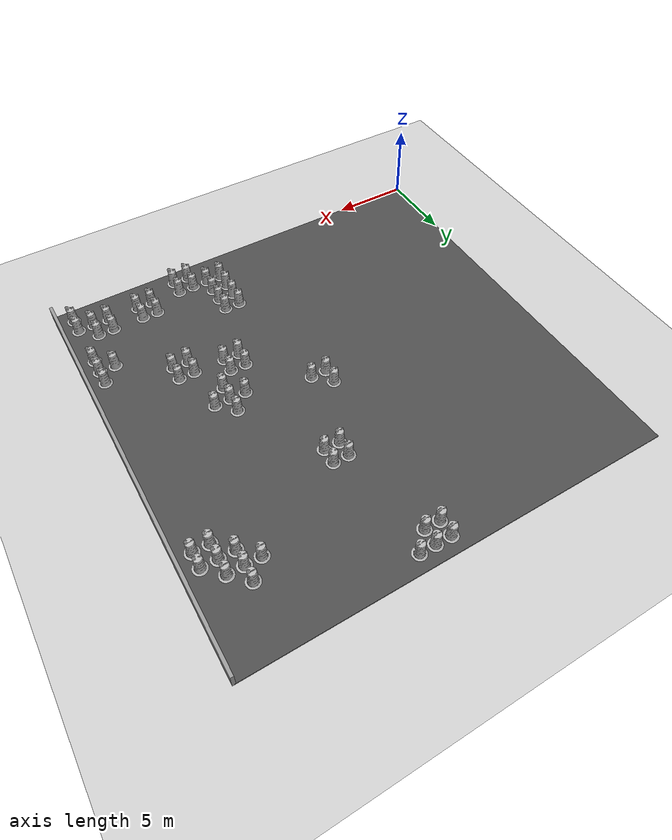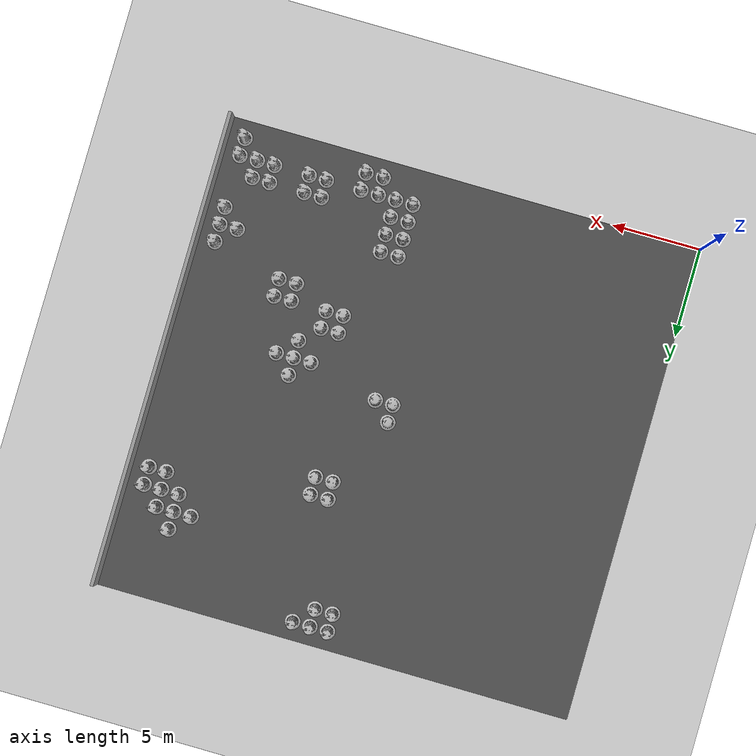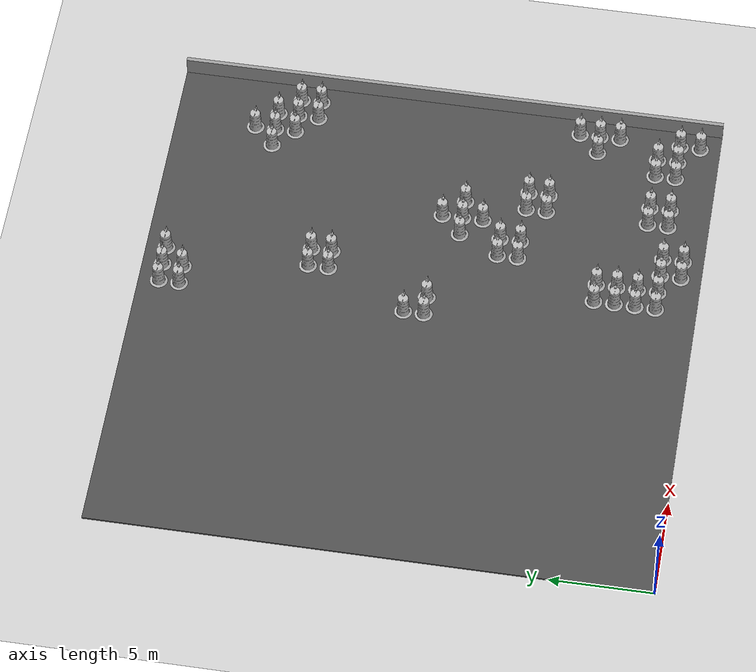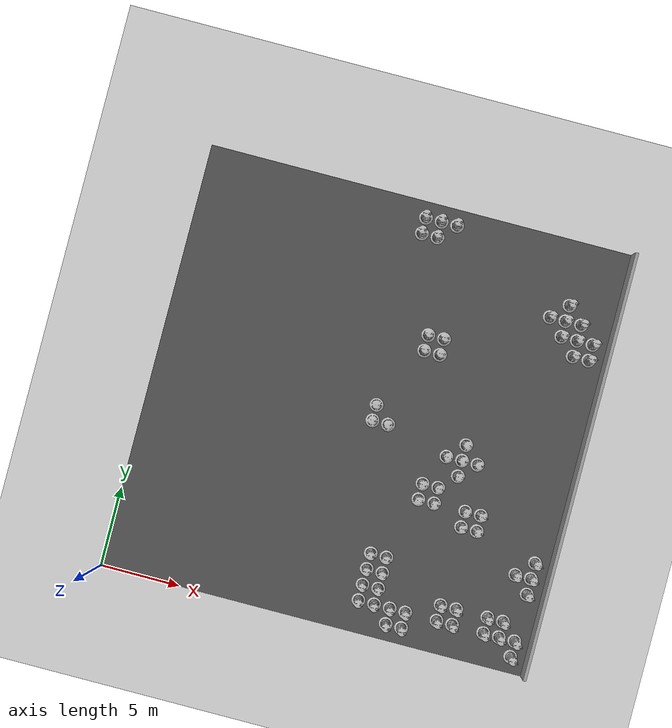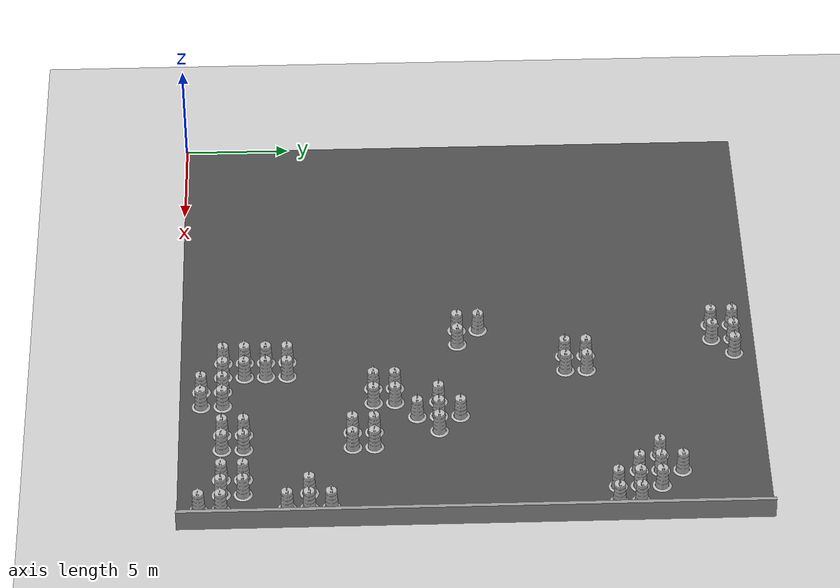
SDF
<sdf version="1.4">
 <world name="default">
  <include><uri>model://ground_plane</uri></include>
  <include><uri>model://sun</uri></include>
  <model name="grey_wall">
   <static>1</static>
   <link name="link">
    <visual name="visual">
     <cast_shadows>0</cast_shadows>
     <geometry><box><size>27 0.2 2</size></box></geometry>
     <material>
      <script>
       <uri>model://grey_wall/materials/scripts</uri>
       <uri>model://grey_wall/materials/textures</uri>
       <name>vrc/grey_wall</name>
      </script>
     </material>
    </visual>
   </link>
   <pose>27 13.5 0 0 0 -1.57079632679</pose>
  </model>
  <model name="asphalt_plane">
   <static>1</static>
   <link name="link">
    <visual name="visual">
     <cast_shadows>0</cast_shadows>
     <geometry><box><size>27 27 0.1</size></box></geometry>
     <material>
      <script>
       <uri>model://asphalt_plane/materials/scripts</uri>
       <uri>model://asphalt_plane/materials/textures</uri>
       <name>vrc/asphalt</name>
      </script>
     </material>
    </visual>
   </link>
   <pose>13.5 13.5 0 0 0 0</pose>
  </model>
  <model name="Construction Barrel">
   <link name="link">
    <collision name="collision">
     <geometry>
      <mesh><uri>model://construction_barrel/meshes/construction_barrel.dae</uri><scale>1 1 1</scale></mesh>
     </geometry>
    </collision>
    <visual name="visual">
     <geometry><mesh><uri>model://construction_barrel/meshes/construction_barrel.dae</uri></mesh></geometry>
    </visual>
   </link>
   <pose>14 13 0 0 0 0</pose>
   <static>1</static>
  </model>
  <model name="Construction Barrel">
   <link name="link">
    <collision name="collision">
     <geometry>
      <mesh><uri>model://construction_barrel/meshes/construction_barrel.dae</uri><scale>1 1 1</scale></mesh>
     </geometry>
    </collision>
    <visual name="visual">
     <geometry><mesh><uri>model://construction_barrel/meshes/construction_barrel.dae</uri></mesh></geometry>
    </visual>
   </link>
   <pose>14 14 0 0 0 0</pose>
   <static>1</static>
  </model>
  <model name="Construction Barrel">
   <link name="link">
    <collision name="collision">
     <geometry>
      <mesh><uri>model://construction_barrel/meshes/construction_barrel.dae</uri><scale>1 1 1</scale></mesh>
     </geometry>
    </collision>
    <visual name="visual">
     <geometry><mesh><uri>model://construction_barrel/meshes/construction_barrel.dae</uri></mesh></geometry>
    </visual>
   </link>
   <pose>14 25 0 0 0 0</pose>
   <static>1</static>
  </model>
  <model name="Construction Barrel">
   <link name="link">
    <collision name="collision">
     <geometry>
      <mesh><uri>model://construction_barrel/meshes/construction_barrel.dae</uri><scale>1 1 1</scale></mesh>
     </geometry>
    </collision>
    <visual name="visual">
     <geometry><mesh><uri>model://construction_barrel/meshes/construction_barrel.dae</uri></mesh></geometry>
    </visual>
   </link>
   <pose>14 26 0 0 0 0</pose>
   <static>1</static>
  </model>
  <model name="Construction Barrel">
   <link name="link">
    <collision name="collision">
     <geometry>
      <mesh><uri>model://construction_barrel/meshes/construction_barrel.dae</uri><scale>1 1 1</scale></mesh>
     </geometry>
    </collision>
    <visual name="visual">
     <geometry><mesh><uri>model://construction_barrel/meshes/construction_barrel.dae</uri></mesh></geometry>
    </visual>
   </link>
   <pose>15 13 0 0 0 0</pose>
   <static>1</static>
  </model>
  <model name="Construction Barrel">
   <link name="link">
    <collision name="collision">
     <geometry>
      <mesh><uri>model://construction_barrel/meshes/construction_barrel.dae</uri><scale>1 1 1</scale></mesh>
     </geometry>
    </collision>
    <visual name="visual">
     <geometry><mesh><uri>model://construction_barrel/meshes/construction_barrel.dae</uri></mesh></geometry>
    </visual>
   </link>
   <pose>15 25 0 0 0 0</pose>
   <static>1</static>
  </model>
  <model name="Construction Barrel">
   <link name="link">
    <collision name="collision">
     <geometry>
      <mesh><uri>model://construction_barrel/meshes/construction_barrel.dae</uri><scale>1 1 1</scale></mesh>
     </geometry>
    </collision>
    <visual name="visual">
     <geometry><mesh><uri>model://construction_barrel/meshes/construction_barrel.dae</uri></mesh></geometry>
    </visual>
   </link>
   <pose>15 26 0 0 0 0</pose>
   <static>1</static>
  </model>
  <model name="Construction Barrel">
   <link name="link">
    <collision name="collision">
     <geometry>
      <mesh><uri>model://construction_barrel/meshes/construction_barrel.dae</uri><scale>1 1 1</scale></mesh>
     </geometry>
    </collision>
    <visual name="visual">
     <geometry><mesh><uri>model://construction_barrel/meshes/construction_barrel.dae</uri></mesh></geometry>
    </visual>
   </link>
   <pose>16 2 0 0 0 0</pose>
   <static>1</static>
  </model>
  <model name="Construction Barrel">
   <link name="link">
    <collision name="collision">
     <geometry>
      <mesh><uri>model://construction_barrel/meshes/construction_barrel.dae</uri><scale>1 1 1</scale></mesh>
     </geometry>
    </collision>
    <visual name="visual">
     <geometry><mesh><uri>model://construction_barrel/meshes/construction_barrel.dae</uri></mesh></geometry>
    </visual>
   </link>
   <pose>16 3 0 0 0 0</pose>
   <static>1</static>
  </model>
  <model name="Construction Barrel">
   <link name="link">
    <collision name="collision">
     <geometry>
      <mesh><uri>model://construction_barrel/meshes/construction_barrel.dae</uri><scale>1 1 1</scale></mesh>
     </geometry>
    </collision>
    <visual name="visual">
     <geometry><mesh><uri>model://construction_barrel/meshes/construction_barrel.dae</uri></mesh></geometry>
    </visual>
   </link>
   <pose>16 4 0 0 0 0</pose>
   <static>1</static>
  </model>
  <model name="Construction Barrel">
   <link name="link">
    <collision name="collision">
     <geometry>
      <mesh><uri>model://construction_barrel/meshes/construction_barrel.dae</uri><scale>1 1 1</scale></mesh>
     </geometry>
    </collision>
    <visual name="visual">
     <geometry><mesh><uri>model://construction_barrel/meshes/construction_barrel.dae</uri></mesh></geometry>
    </visual>
   </link>
   <pose>16 5 0 0 0 0</pose>
   <static>1</static>
  </model>
  <model name="Construction Barrel">
   <link name="link">
    <collision name="collision">
     <geometry>
      <mesh><uri>model://construction_barrel/meshes/construction_barrel.dae</uri><scale>1 1 1</scale></mesh>
     </geometry>
    </collision>
    <visual name="visual">
     <geometry><mesh><uri>model://construction_barrel/meshes/construction_barrel.dae</uri></mesh></geometry>
    </visual>
   </link>
   <pose>16 18 0 0 0 0</pose>
   <static>1</static>
  </model>
  <model name="Construction Barrel">
   <link name="link">
    <collision name="collision">
     <geometry>
      <mesh><uri>model://construction_barrel/meshes/construction_barrel.dae</uri><scale>1 1 1</scale></mesh>
     </geometry>
    </collision>
    <visual name="visual">
     <geometry><mesh><uri>model://construction_barrel/meshes/construction_barrel.dae</uri></mesh></geometry>
    </visual>
   </link>
   <pose>16 19 0 0 0 0</pose>
   <static>1</static>
  </model>
  <model name="Construction Barrel">
   <link name="link">
    <collision name="collision">
     <geometry>
      <mesh><uri>model://construction_barrel/meshes/construction_barrel.dae</uri><scale>1 1 1</scale></mesh>
     </geometry>
    </collision>
    <visual name="visual">
     <geometry><mesh><uri>model://construction_barrel/meshes/construction_barrel.dae</uri></mesh></geometry>
    </visual>
   </link>
   <pose>16 26 0 0 0 0</pose>
   <static>1</static>
  </model>
  <model name="Construction Barrel">
   <link name="link">
    <collision name="collision">
     <geometry>
      <mesh><uri>model://construction_barrel/meshes/construction_barrel.dae</uri><scale>1 1 1</scale></mesh>
     </geometry>
    </collision>
    <visual name="visual">
     <geometry><mesh><uri>model://construction_barrel/meshes/construction_barrel.dae</uri></mesh></geometry>
    </visual>
   </link>
   <pose>17 2 0 0 0 0</pose>
   <static>1</static>
  </model>
  <model name="Construction Barrel">
   <link name="link">
    <collision name="collision">
     <geometry>
      <mesh><uri>model://construction_barrel/meshes/construction_barrel.dae</uri><scale>1 1 1</scale></mesh>
     </geometry>
    </collision>
    <visual name="visual">
     <geometry><mesh><uri>model://construction_barrel/meshes/construction_barrel.dae</uri></mesh></geometry>
    </visual>
   </link>
   <pose>17 3 0 0 0 0</pose>
   <static>1</static>
  </model>
  <model name="Construction Barrel">
   <link name="link">
    <collision name="collision">
     <geometry>
      <mesh><uri>model://construction_barrel/meshes/construction_barrel.dae</uri><scale>1 1 1</scale></mesh>
     </geometry>
    </collision>
    <visual name="visual">
     <geometry><mesh><uri>model://construction_barrel/meshes/construction_barrel.dae</uri></mesh></geometry>
    </visual>
   </link>
   <pose>17 4 0 0 0 0</pose>
   <static>1</static>
  </model>
  <model name="Construction Barrel">
   <link name="link">
    <collision name="collision">
     <geometry>
      <mesh><uri>model://construction_barrel/meshes/construction_barrel.dae</uri><scale>1 1 1</scale></mesh>
     </geometry>
    </collision>
    <visual name="visual">
     <geometry><mesh><uri>model://construction_barrel/meshes/construction_barrel.dae</uri></mesh></geometry>
    </visual>
   </link>
   <pose>17 5 0 0 0 0</pose>
   <static>1</static>
  </model>
  <model name="Construction Barrel">
   <link name="link">
    <collision name="collision">
     <geometry>
      <mesh><uri>model://construction_barrel/meshes/construction_barrel.dae</uri><scale>1 1 1</scale></mesh>
     </geometry>
    </collision>
    <visual name="visual">
     <geometry><mesh><uri>model://construction_barrel/meshes/construction_barrel.dae</uri></mesh></geometry>
    </visual>
   </link>
   <pose>17 18 0 0 0 0</pose>
   <static>1</static>
  </model>
  <model name="Construction Barrel">
   <link name="link">
    <collision name="collision">
     <geometry>
      <mesh><uri>model://construction_barrel/meshes/construction_barrel.dae</uri><scale>1 1 1</scale></mesh>
     </geometry>
    </collision>
    <visual name="visual">
     <geometry><mesh><uri>model://construction_barrel/meshes/construction_barrel.dae</uri></mesh></geometry>
    </visual>
   </link>
   <pose>17 19 0 0 0 0</pose>
   <static>1</static>
  </model>
  <model name="Construction Barrel">
   <link name="link">
    <collision name="collision">
     <geometry>
      <mesh><uri>model://construction_barrel/meshes/construction_barrel.dae</uri><scale>1 1 1</scale></mesh>
     </geometry>
    </collision>
    <visual name="visual">
     <geometry><mesh><uri>model://construction_barrel/meshes/construction_barrel.dae</uri></mesh></geometry>
    </visual>
   </link>
   <pose>18 1 0 0 0 0</pose>
   <static>1</static>
  </model>
  <model name="Construction Barrel">
   <link name="link">
    <collision name="collision">
     <geometry>
      <mesh><uri>model://construction_barrel/meshes/construction_barrel.dae</uri><scale>1 1 1</scale></mesh>
     </geometry>
    </collision>
    <visual name="visual">
     <geometry><mesh><uri>model://construction_barrel/meshes/construction_barrel.dae</uri></mesh></geometry>
    </visual>
   </link>
   <pose>18 2 0 0 0 0</pose>
   <static>1</static>
  </model>
  <model name="Construction Barrel">
   <link name="link">
    <collision name="collision">
     <geometry>
      <mesh><uri>model://construction_barrel/meshes/construction_barrel.dae</uri><scale>1 1 1</scale></mesh>
     </geometry>
    </collision>
    <visual name="visual">
     <geometry><mesh><uri>model://construction_barrel/meshes/construction_barrel.dae</uri></mesh></geometry>
    </visual>
   </link>
   <pose>18 9 0 0 0 0</pose>
   <static>1</static>
  </model>
  <model name="Construction Barrel">
   <link name="link">
    <collision name="collision">
     <geometry>
      <mesh><uri>model://construction_barrel/meshes/construction_barrel.dae</uri><scale>1 1 1</scale></mesh>
     </geometry>
    </collision>
    <visual name="visual">
     <geometry><mesh><uri>model://construction_barrel/meshes/construction_barrel.dae</uri></mesh></geometry>
    </visual>
   </link>
   <pose>18 10 0 0 0 0</pose>
   <static>1</static>
  </model>
  <model name="Construction Barrel">
   <link name="link">
    <collision name="collision">
     <geometry>
      <mesh><uri>model://construction_barrel/meshes/construction_barrel.dae</uri><scale>1 1 1</scale></mesh>
     </geometry>
    </collision>
    <visual name="visual">
     <geometry><mesh><uri>model://construction_barrel/meshes/construction_barrel.dae</uri></mesh></geometry>
    </visual>
   </link>
   <pose>19 1 0 0 0 0</pose>
   <static>1</static>
  </model>
  <model name="Construction Barrel">
   <link name="link">
    <collision name="collision">
     <geometry>
      <mesh><uri>model://construction_barrel/meshes/construction_barrel.dae</uri><scale>1 1 1</scale></mesh>
     </geometry>
    </collision>
    <visual name="visual">
     <geometry><mesh><uri>model://construction_barrel/meshes/construction_barrel.dae</uri></mesh></geometry>
    </visual>
   </link>
   <pose>19 2 0 0 0 0</pose>
   <static>1</static>
  </model>
  <model name="Construction Barrel">
   <link name="link">
    <collision name="collision">
     <geometry>
      <mesh><uri>model://construction_barrel/meshes/construction_barrel.dae</uri><scale>1 1 1</scale></mesh>
     </geometry>
    </collision>
    <visual name="visual">
     <geometry><mesh><uri>model://construction_barrel/meshes/construction_barrel.dae</uri></mesh></geometry>
    </visual>
   </link>
   <pose>19 9 0 0 0 0</pose>
   <static>1</static>
  </model>
  <model name="Construction Barrel">
   <link name="link">
    <collision name="collision">
     <geometry>
      <mesh><uri>model://construction_barrel/meshes/construction_barrel.dae</uri><scale>1 1 1</scale></mesh>
     </geometry>
    </collision>
    <visual name="visual">
     <geometry><mesh><uri>model://construction_barrel/meshes/construction_barrel.dae</uri></mesh></geometry>
    </visual>
   </link>
   <pose>19 10 0 0 0 0</pose>
   <static>1</static>
  </model>
  <model name="Construction Barrel">
   <link name="link">
    <collision name="collision">
     <geometry>
      <mesh><uri>model://construction_barrel/meshes/construction_barrel.dae</uri><scale>1 1 1</scale></mesh>
     </geometry>
    </collision>
    <visual name="visual">
     <geometry><mesh><uri>model://construction_barrel/meshes/construction_barrel.dae</uri></mesh></geometry>
    </visual>
   </link>
   <pose>19 12 0 0 0 0</pose>
   <static>1</static>
  </model>
  <model name="Construction Barrel">
   <link name="link">
    <collision name="collision">
     <geometry>
      <mesh><uri>model://construction_barrel/meshes/construction_barrel.dae</uri><scale>1 1 1</scale></mesh>
     </geometry>
    </collision>
    <visual name="visual">
     <geometry><mesh><uri>model://construction_barrel/meshes/construction_barrel.dae</uri></mesh></geometry>
    </visual>
   </link>
   <pose>20 11 0 0 0 0</pose>
   <static>1</static>
  </model>
  <model name="Construction Barrel">
   <link name="link">
    <collision name="collision">
     <geometry>
      <mesh><uri>model://construction_barrel/meshes/construction_barrel.dae</uri><scale>1 1 1</scale></mesh>
     </geometry>
    </collision>
    <visual name="visual">
     <geometry><mesh><uri>model://construction_barrel/meshes/construction_barrel.dae</uri></mesh></geometry>
    </visual>
   </link>
   <pose>20 12 0 0 0 0</pose>
   <static>1</static>
  </model>
  <model name="Construction Barrel">
   <link name="link">
    <collision name="collision">
     <geometry>
      <mesh><uri>model://construction_barrel/meshes/construction_barrel.dae</uri><scale>1 1 1</scale></mesh>
     </geometry>
    </collision>
    <visual name="visual">
     <geometry><mesh><uri>model://construction_barrel/meshes/construction_barrel.dae</uri></mesh></geometry>
    </visual>
   </link>
   <pose>20 13 0 0 0 0</pose>
   <static>1</static>
  </model>
  <model name="Construction Barrel">
   <link name="link">
    <collision name="collision">
     <geometry>
      <mesh><uri>model://construction_barrel/meshes/construction_barrel.dae</uri><scale>1 1 1</scale></mesh>
     </geometry>
    </collision>
    <visual name="visual">
     <geometry><mesh><uri>model://construction_barrel/meshes/construction_barrel.dae</uri></mesh></geometry>
    </visual>
   </link>
   <pose>21 2 0 0 0 0</pose>
   <static>1</static>
  </model>
  <model name="Construction Barrel">
   <link name="link">
    <collision name="collision">
     <geometry>
      <mesh><uri>model://construction_barrel/meshes/construction_barrel.dae</uri><scale>1 1 1</scale></mesh>
     </geometry>
    </collision>
    <visual name="visual">
     <geometry><mesh><uri>model://construction_barrel/meshes/construction_barrel.dae</uri></mesh></geometry>
    </visual>
   </link>
   <pose>21 3 0 0 0 0</pose>
   <static>1</static>
  </model>
  <model name="Construction Barrel">
   <link name="link">
    <collision name="collision">
     <geometry>
      <mesh><uri>model://construction_barrel/meshes/construction_barrel.dae</uri><scale>1 1 1</scale></mesh>
     </geometry>
    </collision>
    <visual name="visual">
     <geometry><mesh><uri>model://construction_barrel/meshes/construction_barrel.dae</uri></mesh></geometry>
    </visual>
   </link>
   <pose>21 8 0 0 0 0</pose>
   <static>1</static>
  </model>
  <model name="Construction Barrel">
   <link name="link">
    <collision name="collision">
     <geometry>
      <mesh><uri>model://construction_barrel/meshes/construction_barrel.dae</uri><scale>1 1 1</scale></mesh>
     </geometry>
    </collision>
    <visual name="visual">
     <geometry><mesh><uri>model://construction_barrel/meshes/construction_barrel.dae</uri></mesh></geometry>
    </visual>
   </link>
   <pose>21 9 0 0 0 0</pose>
   <static>1</static>
  </model>
  <model name="Construction Barrel">
   <link name="link">
    <collision name="collision">
     <geometry>
      <mesh><uri>model://construction_barrel/meshes/construction_barrel.dae</uri><scale>1 1 1</scale></mesh>
     </geometry>
    </collision>
    <visual name="visual">
     <geometry><mesh><uri>model://construction_barrel/meshes/construction_barrel.dae</uri></mesh></geometry>
    </visual>
   </link>
   <pose>21 12 0 0 0 0</pose>
   <static>1</static>
  </model>
  <model name="Construction Barrel">
   <link name="link">
    <collision name="collision">
     <geometry>
      <mesh><uri>model://construction_barrel/meshes/construction_barrel.dae</uri><scale>1 1 1</scale></mesh>
     </geometry>
    </collision>
    <visual name="visual">
     <geometry><mesh><uri>model://construction_barrel/meshes/construction_barrel.dae</uri></mesh></geometry>
    </visual>
   </link>
   <pose>22 2 0 0 0 0</pose>
   <static>1</static>
  </model>
  <model name="Construction Barrel">
   <link name="link">
    <collision name="collision">
     <geometry>
      <mesh><uri>model://construction_barrel/meshes/construction_barrel.dae</uri><scale>1 1 1</scale></mesh>
     </geometry>
    </collision>
    <visual name="visual">
     <geometry><mesh><uri>model://construction_barrel/meshes/construction_barrel.dae</uri></mesh></geometry>
    </visual>
   </link>
   <pose>22 3 0 0 0 0</pose>
   <static>1</static>
  </model>
  <model name="Construction Barrel">
   <link name="link">
    <collision name="collision">
     <geometry>
      <mesh><uri>model://construction_barrel/meshes/construction_barrel.dae</uri><scale>1 1 1</scale></mesh>
     </geometry>
    </collision>
    <visual name="visual">
     <geometry><mesh><uri>model://construction_barrel/meshes/construction_barrel.dae</uri></mesh></geometry>
    </visual>
   </link>
   <pose>22 8 0 0 0 0</pose>
   <static>1</static>
  </model>
  <model name="Construction Barrel">
   <link name="link">
    <collision name="collision">
     <geometry>
      <mesh><uri>model://construction_barrel/meshes/construction_barrel.dae</uri><scale>1 1 1</scale></mesh>
     </geometry>
    </collision>
    <visual name="visual">
     <geometry><mesh><uri>model://construction_barrel/meshes/construction_barrel.dae</uri></mesh></geometry>
    </visual>
   </link>
   <pose>22 9 0 0 0 0</pose>
   <static>1</static>
  </model>
  <model name="Construction Barrel">
   <link name="link">
    <collision name="collision">
     <geometry>
      <mesh><uri>model://construction_barrel/meshes/construction_barrel.dae</uri><scale>1 1 1</scale></mesh>
     </geometry>
    </collision>
    <visual name="visual">
     <geometry><mesh><uri>model://construction_barrel/meshes/construction_barrel.dae</uri></mesh></geometry>
    </visual>
   </link>
   <pose>23 22 0 0 0 0</pose>
   <static>1</static>
  </model>
  <model name="Construction Barrel">
   <link name="link">
    <collision name="collision">
     <geometry>
      <mesh><uri>model://construction_barrel/meshes/construction_barrel.dae</uri><scale>1 1 1</scale></mesh>
     </geometry>
    </collision>
    <visual name="visual">
     <geometry><mesh><uri>model://construction_barrel/meshes/construction_barrel.dae</uri></mesh></geometry>
    </visual>
   </link>
   <pose>24 2 0 0 0 0</pose>
   <static>1</static>
  </model>
  <model name="Construction Barrel">
   <link name="link">
    <collision name="collision">
     <geometry>
      <mesh><uri>model://construction_barrel/meshes/construction_barrel.dae</uri><scale>1 1 1</scale></mesh>
     </geometry>
    </collision>
    <visual name="visual">
     <geometry><mesh><uri>model://construction_barrel/meshes/construction_barrel.dae</uri></mesh></geometry>
    </visual>
   </link>
   <pose>24 3 0 0 0 0</pose>
   <static>1</static>
  </model>
  <model name="Construction Barrel">
   <link name="link">
    <collision name="collision">
     <geometry>
      <mesh><uri>model://construction_barrel/meshes/construction_barrel.dae</uri><scale>1 1 1</scale></mesh>
     </geometry>
    </collision>
    <visual name="visual">
     <geometry><mesh><uri>model://construction_barrel/meshes/construction_barrel.dae</uri></mesh></geometry>
    </visual>
   </link>
   <pose>24 21 0 0 0 0</pose>
   <static>1</static>
  </model>
  <model name="Construction Barrel">
   <link name="link">
    <collision name="collision">
     <geometry>
      <mesh><uri>model://construction_barrel/meshes/construction_barrel.dae</uri><scale>1 1 1</scale></mesh>
     </geometry>
    </collision>
    <visual name="visual">
     <geometry><mesh><uri>model://construction_barrel/meshes/construction_barrel.dae</uri></mesh></geometry>
    </visual>
   </link>
   <pose>24 22 0 0 0 0</pose>
   <static>1</static>
  </model>
  <model name="Construction Barrel">
   <link name="link">
    <collision name="collision">
     <geometry>
      <mesh><uri>model://construction_barrel/meshes/construction_barrel.dae</uri><scale>1 1 1</scale></mesh>
     </geometry>
    </collision>
    <visual name="visual">
     <geometry><mesh><uri>model://construction_barrel/meshes/construction_barrel.dae</uri></mesh></geometry>
    </visual>
   </link>
   <pose>24 23 0 0 0 0</pose>
   <static>1</static>
  </model>
  <model name="Construction Barrel">
   <link name="link">
    <collision name="collision">
     <geometry>
      <mesh><uri>model://construction_barrel/meshes/construction_barrel.dae</uri><scale>1 1 1</scale></mesh>
     </geometry>
    </collision>
    <visual name="visual">
     <geometry><mesh><uri>model://construction_barrel/meshes/construction_barrel.dae</uri></mesh></geometry>
    </visual>
   </link>
   <pose>25 2 0 0 0 0</pose>
   <static>1</static>
  </model>
  <model name="Construction Barrel">
   <link name="link">
    <collision name="collision">
     <geometry>
      <mesh><uri>model://construction_barrel/meshes/construction_barrel.dae</uri><scale>1 1 1</scale></mesh>
     </geometry>
    </collision>
    <visual name="visual">
     <geometry><mesh><uri>model://construction_barrel/meshes/construction_barrel.dae</uri></mesh></geometry>
    </visual>
   </link>
   <pose>25 3 0 0 0 0</pose>
   <static>1</static>
  </model>
  <model name="Construction Barrel">
   <link name="link">
    <collision name="collision">
     <geometry>
      <mesh><uri>model://construction_barrel/meshes/construction_barrel.dae</uri><scale>1 1 1</scale></mesh>
     </geometry>
    </collision>
    <visual name="visual">
     <geometry><mesh><uri>model://construction_barrel/meshes/construction_barrel.dae</uri></mesh></geometry>
    </visual>
   </link>
   <pose>25 6 0 0 0 0</pose>
   <static>1</static>
  </model>
  <model name="Construction Barrel">
   <link name="link">
    <collision name="collision">
     <geometry>
      <mesh><uri>model://construction_barrel/meshes/construction_barrel.dae</uri><scale>1 1 1</scale></mesh>
     </geometry>
    </collision>
    <visual name="visual">
     <geometry><mesh><uri>model://construction_barrel/meshes/construction_barrel.dae</uri></mesh></geometry>
    </visual>
   </link>
   <pose>25 20 0 0 0 0</pose>
   <static>1</static>
  </model>
  <model name="Construction Barrel">
   <link name="link">
    <collision name="collision">
     <geometry>
      <mesh><uri>model://construction_barrel/meshes/construction_barrel.dae</uri><scale>1 1 1</scale></mesh>
     </geometry>
    </collision>
    <visual name="visual">
     <geometry><mesh><uri>model://construction_barrel/meshes/construction_barrel.dae</uri></mesh></geometry>
    </visual>
   </link>
   <pose>25 21 0 0 0 0</pose>
   <static>1</static>
  </model>
  <model name="Construction Barrel">
   <link name="link">
    <collision name="collision">
     <geometry>
      <mesh><uri>model://construction_barrel/meshes/construction_barrel.dae</uri><scale>1 1 1</scale></mesh>
     </geometry>
    </collision>
    <visual name="visual">
     <geometry><mesh><uri>model://construction_barrel/meshes/construction_barrel.dae</uri></mesh></geometry>
    </visual>
   </link>
   <pose>25 22 0 0 0 0</pose>
   <static>1</static>
  </model>
  <model name="Construction Barrel">
   <link name="link">
    <collision name="collision">
     <geometry>
      <mesh><uri>model://construction_barrel/meshes/construction_barrel.dae</uri><scale>1 1 1</scale></mesh>
     </geometry>
    </collision>
    <visual name="visual">
     <geometry><mesh><uri>model://construction_barrel/meshes/construction_barrel.dae</uri></mesh></geometry>
    </visual>
   </link>
   <pose>26 1 0 0 0 0</pose>
   <static>1</static>
  </model>
  <model name="Construction Barrel">
   <link name="link">
    <collision name="collision">
     <geometry>
      <mesh><uri>model://construction_barrel/meshes/construction_barrel.dae</uri><scale>1 1 1</scale></mesh>
     </geometry>
    </collision>
    <visual name="visual">
     <geometry><mesh><uri>model://construction_barrel/meshes/construction_barrel.dae</uri></mesh></geometry>
    </visual>
   </link>
   <pose>26 2 0 0 0 0</pose>
   <static>1</static>
  </model>
  <model name="Construction Barrel">
   <link name="link">
    <collision name="collision">
     <geometry>
      <mesh><uri>model://construction_barrel/meshes/construction_barrel.dae</uri><scale>1 1 1</scale></mesh>
     </geometry>
    </collision>
    <visual name="visual">
     <geometry><mesh><uri>model://construction_barrel/meshes/construction_barrel.dae</uri></mesh></geometry>
    </visual>
   </link>
   <pose>26 5 0 0 0 0</pose>
   <static>1</static>
  </model>
  <model name="Construction Barrel">
   <link name="link">
    <collision name="collision">
     <geometry>
      <mesh><uri>model://construction_barrel/meshes/construction_barrel.dae</uri><scale>1 1 1</scale></mesh>
     </geometry>
    </collision>
    <visual name="visual">
     <geometry><mesh><uri>model://construction_barrel/meshes/construction_barrel.dae</uri></mesh></geometry>
    </visual>
   </link>
   <pose>26 6 0 0 0 0</pose>
   <static>1</static>
  </model>
  <model name="Construction Barrel">
   <link name="link">
    <collision name="collision">
     <geometry>
      <mesh><uri>model://construction_barrel/meshes/construction_barrel.dae</uri><scale>1 1 1</scale></mesh>
     </geometry>
    </collision>
    <visual name="visual">
     <geometry><mesh><uri>model://construction_barrel/meshes/construction_barrel.dae</uri></mesh></geometry>
    </visual>
   </link>
   <pose>26 7 0 0 0 0</pose>
   <static>1</static>
  </model>
  <model name="Construction Barrel">
   <link name="link">
    <collision name="collision">
     <geometry>
      <mesh><uri>model://construction_barrel/meshes/construction_barrel.dae</uri><scale>1 1 1</scale></mesh>
     </geometry>
    </collision>
    <visual name="visual">
     <geometry><mesh><uri>model://construction_barrel/meshes/construction_barrel.dae</uri></mesh></geometry>
    </visual>
   </link>
   <pose>26 20 0 0 0 0</pose>
   <static>1</static>
  </model>
  <model name="Construction Barrel">
   <link name="link">
    <collision name="collision">
     <geometry>
      <mesh><uri>model://construction_barrel/meshes/construction_barrel.dae</uri><scale>1 1 1</scale></mesh>
     </geometry>
    </collision>
    <visual name="visual">
     <geometry><mesh><uri>model://construction_barrel/meshes/construction_barrel.dae</uri></mesh></geometry>
    </visual>
   </link>
   <pose>26 21 0 0 0 0</pose>
   <static>1</static>
  </model>
 </world>
</sdf>
